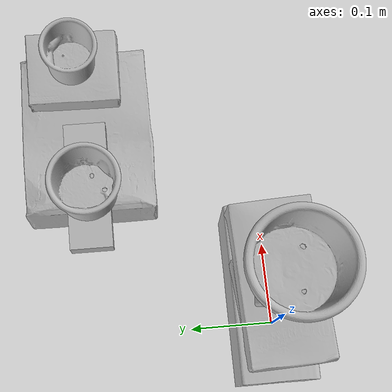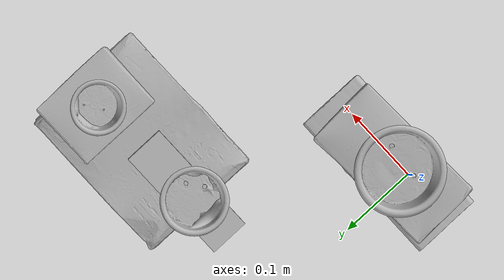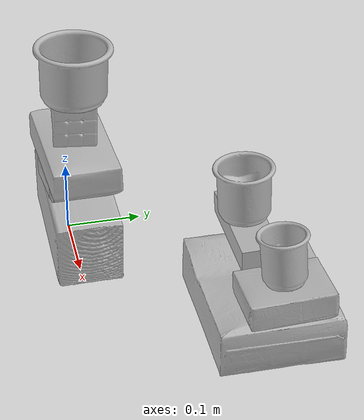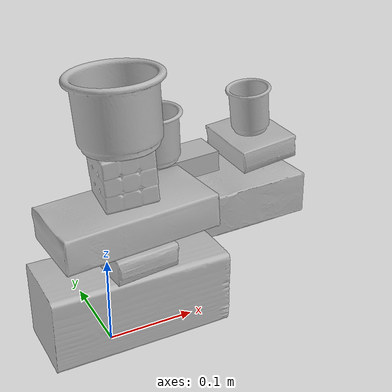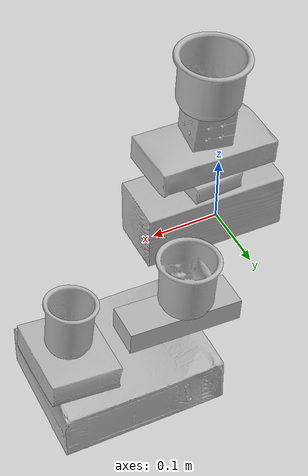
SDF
<?xml version="1.0" ?>
<sdf version="1.4">

  <world name="default">

    <light name="light1" type="point">

      <pose>0 0 1 0 0 0</pose>

      <diffuse>3 3 3 1</diffuse>

      <specular>3 3 3 1</specular>

    </light>

    <light name="light2" type="point">

      <pose>0 0.5 2 0 0 0</pose>

      <diffuse>1 1 1 1</diffuse>

      <specular>1 1 1 1</specular>

    </light>

    <light name="light3" type="point">

      <pose>0 0.5 2 0 0 0</pose>

      <diffuse>3 3 3 1</diffuse>

      <specular>3 3 3 1</specular>

    </light>

    <scene>

      <ambient>0.7 0.7 0.7</ambient>

    </scene>

    <model name="box21">

      <link name="link_box21">

        <collision name="default">

          <geometry>

            <mesh>

              <uri>model://cracker_box/collision_meshes/collision.obj</uri>

              <scale>1.0 1.0 1.0</scale>

            </mesh>

          </geometry>

          <surface>

            <friction>

              <ode>

                <mu>0.5</mu>

                <mu2>0.5</mu2>

              </ode>

            </friction>

          </surface>

        </collision>

        <visual name="default">

          <geometry>

            <mesh>

              <uri>model://cracker_box/visual_meshes/visual.dae</uri>

              <scale>1.0 1.0 1.0</scale>

            </mesh>

          </geometry>

        </visual>

        <inertial>

          <mass>2.2869980335235596</mass>

          <pose>0.0009464151225984097 0.0002543425071053207 -0.0017029535956680775 -0.0003162075418873318 -0.011106487737663914 0.0025467956997025456</pose>

          <inertia>

            <ixx>0.005817102</ixx>

            <iyy>0.009605178</iyy>

            <izz>0.013707472</izz>

            <ixy>0</ixy>

            <ixz>0</ixz>

            <iyz>0</iyz>

          </inertia>

        </inertial>

      </link>

      <pose>0.24975042045116425 0.21063213050365448 0.0364818349480629 -0.011788936784506132 -0.007367235901625634 0.0004955877658159996</pose>

    </model>

    <model name="box22">

      <link name="link_box22">

        <collision name="default">

          <geometry>

            <mesh>

              <uri>model://pudding_box/collision_meshes/collision.obj</uri>

              <scale>1.0 1.0 1.0</scale>

            </mesh>

          </geometry>

          <surface>

            <friction>

              <ode>

                <mu>0.5</mu>

                <mu2>0.5</mu2>

              </ode>

            </friction>

          </surface>

        </collision>

        <visual name="default">

          <geometry>

            <mesh>

              <uri>model://pudding_box/visual_meshes/visual.dae</uri>

              <scale>1.0 1.0 1.0</scale>

            </mesh>

          </geometry>

        </visual>

        <inertial>

          <mass>0.5370154976844788</mass>

          <pose>0.0004894821904599667 0.0008067885646596551 -0.0005188827635720372 0.005213101796859606 -0.006603800100757192 0.02007981956729938</pose>

          <inertia>

            <ixx>0.0006070684</ixx>

            <iyy>0.00040843996</iyy>

            <izz>0.00089649507</izz>

            <ixy>0</ixy>

            <ixz>0</ixz>

            <iyz>0</iyz>

          </inertia>

        </inertial>

      </link>

      <pose>0.3170345425605774 0.21978995203971863 0.09284412860870361 0.024547013666203283 -0.1037492378124104 -0.0035365616210209995</pose>

    </model>

    <model name="box23">

      <link name="link_box23">

        <collision name="default">

          <geometry>

            <mesh>

              <uri>model://jenga/collision_meshes/collision.obj</uri>

              <scale>1.0 1.0 1.0</scale>

            </mesh>

          </geometry>

          <surface>

            <friction>

              <ode>

                <mu>0.5</mu>

                <mu2>0.5</mu2>

              </ode>

            </friction>

          </surface>

        </collision>

        <visual name="default">

          <geometry>

            <mesh>

              <uri>model://jenga/visual_meshes/visual.dae</uri>

              <scale>1.0 1.0 1.0</scale>

            </mesh>

          </geometry>

        </visual>

        <inertial>

          <mass>0.17325031757354736</mass>

          <pose>-2.502855807051674e-07 -0.0001025000965455547 -4.0923401684267446e-05 0.0 -7.34215461761844e-07 0.0</pose>

          <inertia>

            <ixx>4.7942573e-05</ixx>

            <iyy>0.00032485754</iyy>

            <izz>0.00034681303</izz>

            <ixy>0</ixy>

            <ixz>0</ixz>

            <iyz>0</iyz>

          </inertia>

        </inertial>

      </link>

      <pose>0.16876648366451263 0.21032249927520752 0.08519228547811508 0.01956843144257751 -0.06242509069033699 -0.0006416627199249209</pose>

    </model>

    <model name="cup1">

      <link name="link_cup1">

        <collision name="default">

          <geometry>

            <mesh>

              <uri>model://c_cups/collision_meshes/collision.obj</uri>

              <scale>1.0 1.0 1.0</scale>

            </mesh>

          </geometry>

          <surface>

            <friction>

              <ode>

                <mu>0.5</mu>

                <mu2>0.5</mu2>

              </ode>

            </friction>

          </surface>

        </collision>

        <visual name="default">

          <geometry>

            <mesh>

              <uri>model://c_cups/visual_meshes/visual.dae</uri>

              <scale>1.0 1.0 1.0</scale>

            </mesh>

          </geometry>

        </visual>

        <inertial>

          <mass>0.033937059342861176</mass>

          <pose>0.0007237257086671889 0.002015391131862998 -0.0012750985333696008 0.3021568203324006 0.0134615240317058 -0.08771816491093205</pose>

          <inertia>

            <ixx>2.5238536e-05</ixx>

            <iyy>2.4792533e-05</iyy>

            <izz>2.2320162e-05</izz>

            <ixy>0</ixy>

            <ixz>0</ixz>

            <iyz>0</iyz>

          </inertia>

        </inertial>

      </link>

      <pose>0.31220173835754395 0.2180401235818863 0.1445215940475464 0.0420249533417102 -0.13623925576831988 0.008313719533358542</pose>

    </model>

    <model name="cup2">

      <link name="link_cup2">

        <collision name="default">

          <geometry>

            <mesh>

              <uri>model://f_cups/collision_meshes/collision.obj</uri>

              <scale>1.0 1.0 1.0</scale>

            </mesh>

          </geometry>

          <surface>

            <friction>

              <ode>

                <mu>0.5</mu>

                <mu2>0.5</mu2>

              </ode>

            </friction>

          </surface>

        </collision>

        <visual name="default">

          <geometry>

            <mesh>

              <uri>model://f_cups/visual_meshes/visual.dae</uri>

              <scale>1.0 1.0 1.0</scale>

            </mesh>

          </geometry>

        </visual>

        <inertial>

          <mass>0.10278050601482391</mass>

          <pose>-0.003171466989442706 -0.0006240068469196558 -0.003655537962913513 0.7862283183637603 -0.2607933822369466 -0.1823733550036739</pose>

          <inertia>

            <ixx>9.661645e-05</ixx>

            <iyy>0.00010135175</iyy>

            <izz>0.000105510015</izz>

            <ixy>0</ixy>

            <ixz>0</ixz>

            <iyz>0</iyz>

          </inertia>

        </inertial>

      </link>

      <pose>0.15551944077014923 0.20921890437602997 0.13575918972492218 0.019632208867382504 -0.06241371357958428 -0.0006566364843646242</pose>

    </model>

    <model name="box11">

      <link name="link_box11">

        <collision name="default">

          <geometry>

            <mesh>

              <uri>model://wood_block/collision_meshes/collision.obj</uri>

              <scale>1.0 1.0 1.0</scale>

            </mesh>

          </geometry>

          <surface>

            <friction>

              <ode>

                <mu>0.5</mu>

                <mu2>0.5</mu2>

              </ode>

            </friction>

          </surface>

        </collision>

        <visual name="default">

          <geometry>

            <mesh>

              <uri>model://wood_block/visual_meshes/visual.dae</uri>

              <scale>1.0 1.0 1.0</scale>

            </mesh>

          </geometry>

        </visual>

        <inertial>

          <mass>2.321592330932617</mass>

          <pose>-5.813315056002466e-06 -0.000570809468626976 0.0002640858292579651 -0.052209755297172346 -0.005192694580027673 -0.006861376555374886</pose>

          <inertia>

            <ixx>0.0031066423</ixx>

            <iyy>0.009813884</iyy>

            <izz>0.009777175</izz>

            <ixy>0</ixy>

            <ixz>0</ixz>

            <iyz>0</iyz>

          </inertia>

        </inertial>

      </link>

      <pose>0.030017418786883354 0.011029074899852276 0.04525859281420708 -0.005214487422224721 0.0057190786683995725 -0.0007238200992083617</pose>

    </model>

    <model name="box12">

      <link name="link_box12">

        <collision name="default">

          <geometry>

            <mesh>

              <uri>model://gelatin_box/collision_meshes/collision.obj</uri>

              <scale>1.0 1.0 1.0</scale>

            </mesh>

          </geometry>

          <surface>

            <friction>

              <ode>

                <mu>0.5</mu>

                <mu2>0.5</mu2>

              </ode>

            </friction>

          </surface>

        </collision>

        <visual name="default">

          <geometry>

            <mesh>

              <uri>model://gelatin_box/visual_meshes/visual.dae</uri>

              <scale>1.0 1.0 1.0</scale>

            </mesh>

          </geometry>

        </visual>

        <inertial>

          <mass>0.2263340801000595</mass>

          <pose>0.0004319618456065655 0.00011156871914863586 -0.00036403207923285663 -0.001050371981036731 -0.004755818689382226 0.016440561334450605</pose>

          <inertia>

            <ixx>0.00015977336</ixx>

            <iyy>0.00011412529</iyy>

            <izz>0.00024321067</izz>

            <ixy>0</ixy>

            <ixz>0</ixz>

            <iyz>0</iyz>

          </inertia>

        </inertial>

      </link>

      <pose>0.03026718460023403 0.009329627268016338 0.10602966696023941 8.479209454863022e-05 -0.006990150132226037 0.07712081693910512</pose>

    </model>

    <model name="box13">

      <link name="link_box13">

        <collision name="default">

          <geometry>

            <mesh>

              <uri>model://sugar_box/collision_meshes/collision.obj</uri>

              <scale>1.0 1.0 1.0</scale>

            </mesh>

          </geometry>

          <surface>

            <friction>

              <ode>

                <mu>0.5</mu>

                <mu2>0.5</mu2>

              </ode>

            </friction>

          </surface>

        </collision>

        <visual name="default">

          <geometry>

            <mesh>

              <uri>model://sugar_box/visual_meshes/visual.dae</uri>

              <scale>1.0 1.0 1.0</scale>

            </mesh>

          </geometry>

        </visual>

        <inertial>

          <mass>0.4976349174976349</mass>

          <pose>0.0010343727190047503 3.849109634757042e-05 -0.00036364805418998003 -0.0004046263004245651 0.001050663405794887 0.002615379021776999</pose>

          <inertia>

            <ixx>0.0004146281</ixx>

            <iyy>0.0013401629</iyy>

            <izz>0.0016043353</izz>

            <ixy>0</ixy>

            <ixz>0</ixz>

            <iyz>0</iyz>

          </inertia>

        </inertial>

      </link>

      <pose>0.028596237301826477 0.009860849939286709 0.14315684139728546 -0.03018435479957051 -0.044840099448428344 0.035928313866345894</pose>

    </model>

    <model name="box14">

      <link name="link_box14">

        <collision name="default">

          <geometry>

            <mesh>

              <uri>model://rubiks_cube/collision_meshes/collision.obj</uri>

              <scale>1.0 1.0 1.0</scale>

            </mesh>

          </geometry>

          <surface>

            <friction>

              <ode>

                <mu>0.5</mu>

                <mu2>0.5</mu2>

              </ode>

            </friction>

          </surface>

        </collision>

        <visual name="default">

          <geometry>

            <mesh>

              <uri>model://rubiks_cube/visual_meshes/visual.dae</uri>

              <scale>1.0 1.0 1.0</scale>

            </mesh>

          </geometry>

        </visual>

        <inertial>

          <mass>0.2531126141548157</mass>

          <pose>2.6721041649580002e-05 5.2569666877388954e-05 -7.264316536748083e-06 -0.05467274129792389 -0.0981396008906979 -0.0344563195746163</pose>

          <inertia>

            <ixx>0.00013986173</ixx>

            <iyy>0.00013920949</iyy>

            <izz>0.00014102072</izz>

            <ixy>0</ixy>

            <ixz>0</ixz>

            <iyz>0</iyz>

          </inertia>

        </inertial>

      </link>

      <pose>0.026828128844499588 0.011064465157687664 0.1941850483417511 -0.021701530191840727 -0.07298281340582503 -0.07979025109010238</pose>

    </model>

    <model name="cup15">

      <link name="link_cup15">

        <collision name="default">

          <geometry>

            <mesh>

              <uri>model://j_cups/collision_meshes/collision.obj</uri>

              <scale>1.0 1.0 1.0</scale>

            </mesh>

          </geometry>

          <surface>

            <friction>

              <ode>

                <mu>0.5</mu>

                <mu2>0.5</mu2>

              </ode>

            </friction>

          </surface>

        </collision>

        <visual name="default">

          <geometry>

            <mesh>

              <uri>model://j_cups/visual_meshes/visual.dae</uri>

              <scale>1.0 1.0 1.0</scale>

            </mesh>

          </geometry>

        </visual>

        <inertial>

          <mass>0.12765173614025116</mass>

          <pose>0.0006164864171296358 0.0005398980574682355 -0.0013479006011039019 0.030303852295551513 0.03757989298695449 0.4386938541947324</pose>

          <inertia>

            <ixx>0.00018743309</ixx>

            <iyy>0.00018938213</iyy>

            <izz>0.0002160715</izz>

            <ixy>0</ixy>

            <ixz>0</ixz>

            <iyz>0</iyz>

          </inertia>

        </inertial>

      </link>

      <pose>0.02526659145951271 0.013761080801486969 0.2609848976135254 -0.04017218889622896 -0.04749240408451781 0.09366506007835228</pose>

    </model>

  </world>

</sdf>
